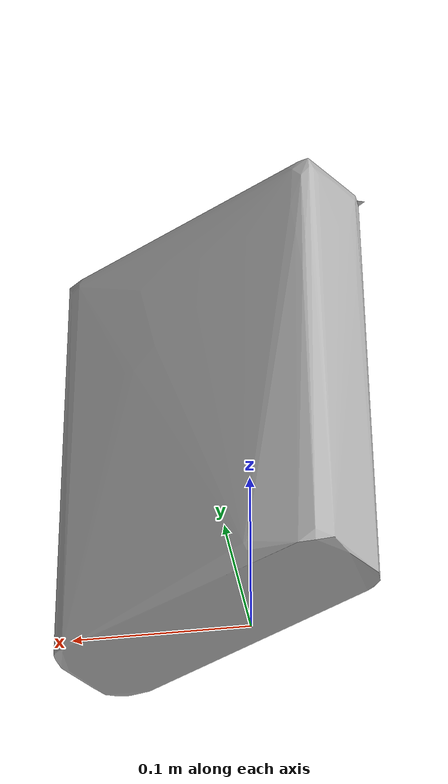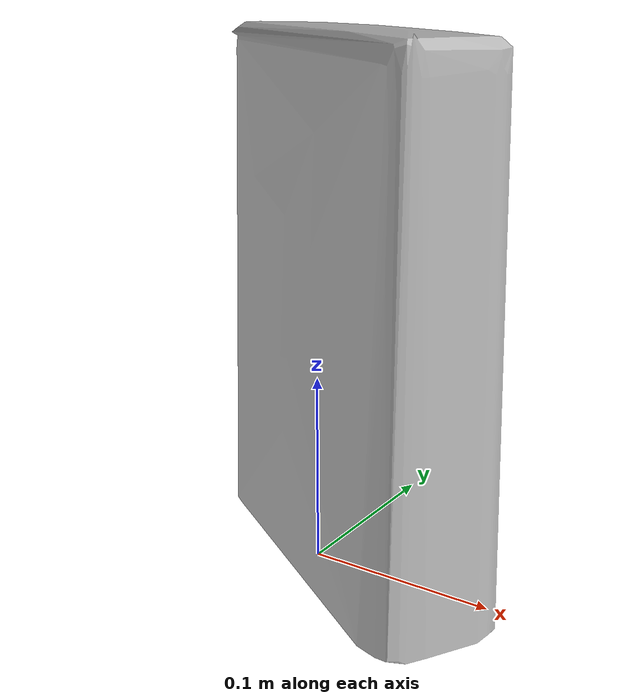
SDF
<?xml version='1.0'?>
<sdf version="1.4">
  <model name="honey_bunches_of_oats_with_almonds">
    <static>false</static>
    <link name="link">
      <inertial>
        <pose>0.021325693066267127 0.0011186991521898255 0.13590539432324025 3.139950547849213 -0.008115118364170068 -2.1283787780414682</pose>
        <mass>0.3180543463092233</mass>
        <inertia>
          <ixx>0.0028546532230984737</ixx>
          <ixy>9.310519443525841e-20</ixy>
          <ixz>9.590397339501328e-22</ixz>
          <iyy>0.0019871814902018966</iyy>
          <iyz>6.1541760540740165e-21</iyz>
          <izz>0.0010650532801709173</izz>
        </inertia>
      </inertial>
      <collision name="collision">
        <geometry>
          <mesh>
            <!-- Use a downsampled mesh for collisions -->
            <uri>model:///honey_bunches_of_oats_with_almonds/honey_bunches_of_oats_with_almonds_250_collision.obj</uri>
	        </mesh>
        </geometry>
        <surface>
      </surface>
      </collision>
      <visual name="visual">
        <geometry>
          <mesh>
            <uri>model:///honey_bunches_of_oats_with_almonds/optimized_tsdf_texture_mapped_mesh.obj</uri>
	        </mesh>
        </geometry>
        <material>
          <script>
            <uri>model:///honey_bunches_of_oats_with_almonds/honey_bunches_of_oats_with_almonds.material</uri>
            <name>honey_bunches_of_oats_with_almonds</name>
          </script>
        </material>
      </visual>
    </link>
  </model>
</sdf>
